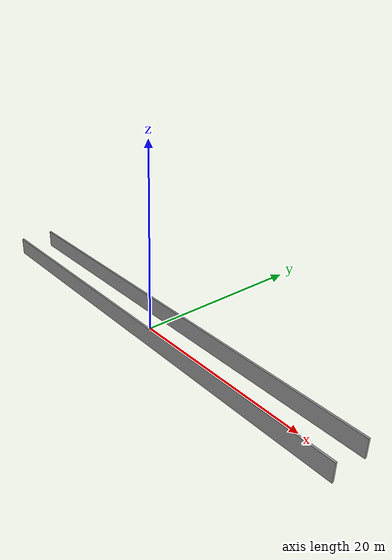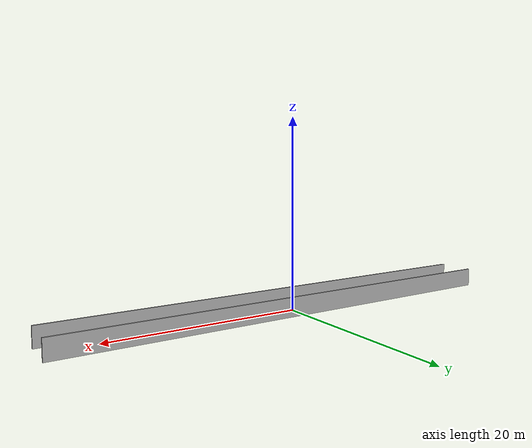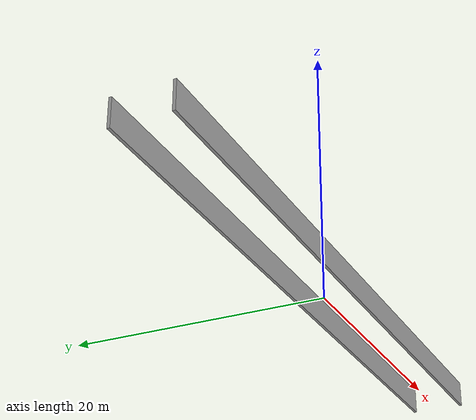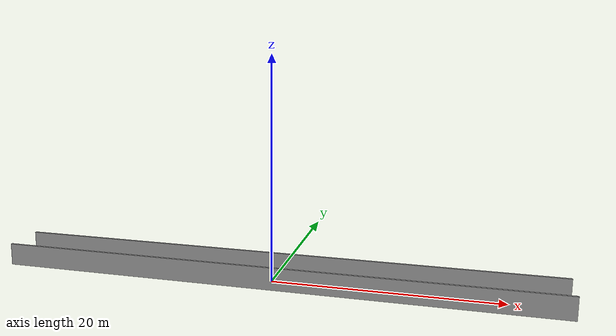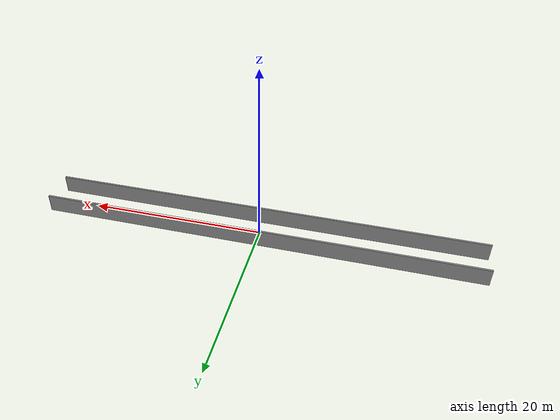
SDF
<?xml version='1.0'?>
<sdf version='1.6'>
  <model name='straight_walls'>
    <link name='left_wall'>
      <collision name='left_wall_collision'>
        <geometry>
          <box>
            <size>50 0.2 2</size>
          </box>
        </geometry>
        <pose frame=''>0 -2 1 0 -0 0</pose>
      </collision>
      <visual name='left_wall_visual'>
        <pose frame=''>0 -2 1 0 -0 0</pose>
        <geometry>
          <box>
            <size>50 0.2 2</size>
          </box>
        </geometry>
        <material>
          <script>
            <uri>file://media/materials/scripts/gazebo.material</uri>
            <name>Gazebo/Grey</name>
          </script>
          <ambient>1 1 1 1</ambient>
        </material>
      </visual>
    </link>
    <link name='right_wall'>
      <collision name='right_wall_collision'>
        <geometry>
          <box>
            <size>50 0.2 2</size>
          </box>
        </geometry>
        <pose frame=''>0 2 1 0 -0 0</pose>
      </collision>
      <visual name='right_wall_visual'>
        <pose frame=''>0 2 1 0 -0 0</pose>
        <geometry>
          <box>
            <size>50 0.2 2</size>
          </box>
        </geometry>
        <material>
          <script>
            <uri>file://media/materials/scripts/gazebo.material</uri>
            <name>Gazebo/Grey</name>
          </script>
          <ambient>1 1 1 1</ambient>
        </material>
      </visual>
    </link>
    <static>1</static>
  </model>
</sdf>
